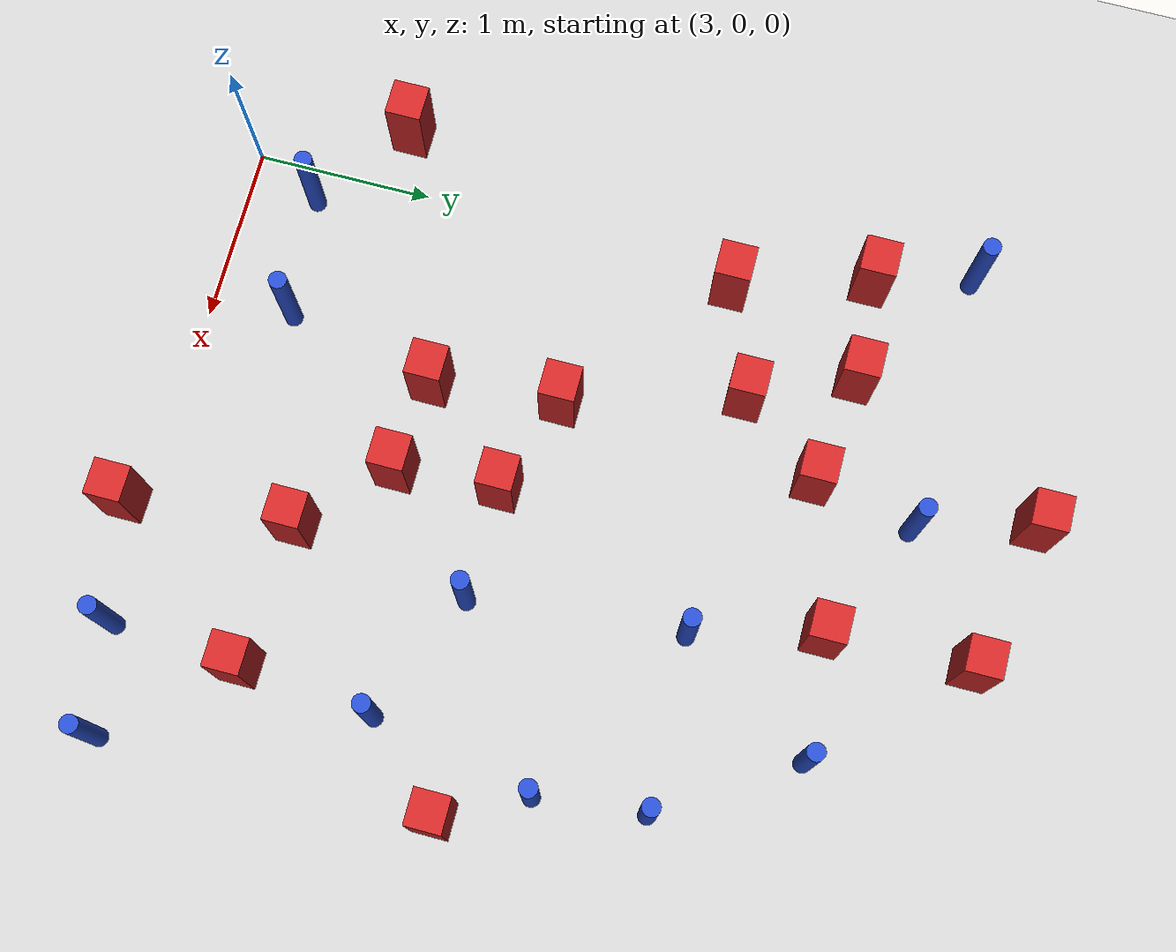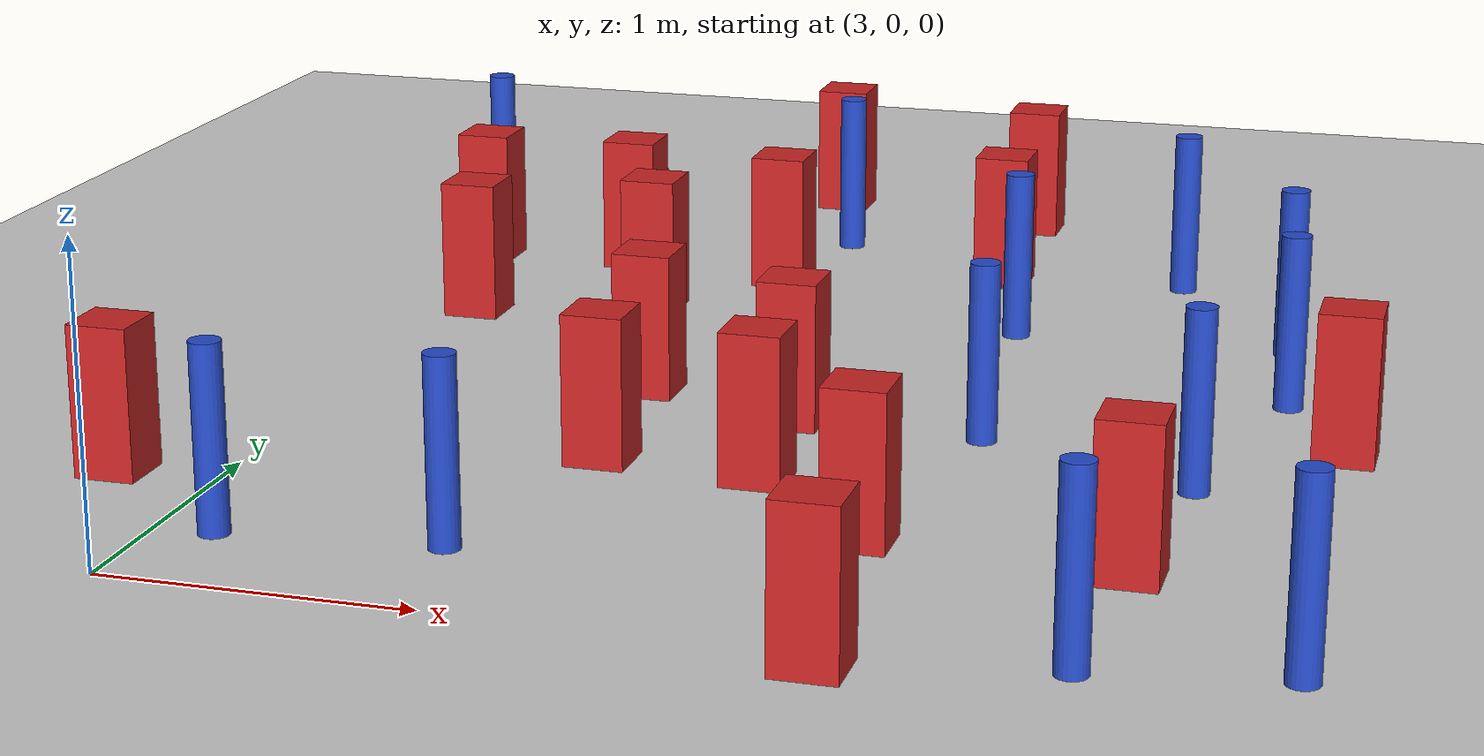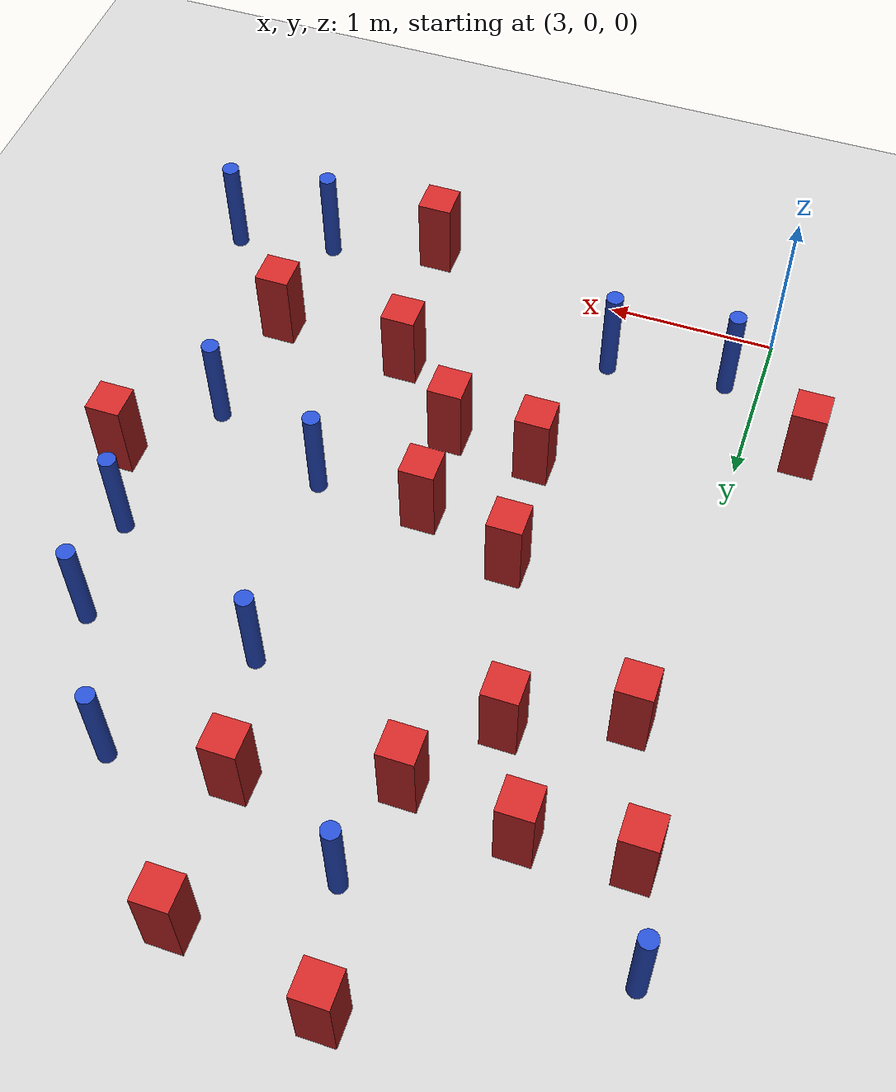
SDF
<sdf version="1.6">
 <world name="default">
  <model name="ground_plane">
   <static>1</static>
   <link name="link">
    <collision name="collision">
     <geometry><plane><normal>0 0 1</normal><size>100 100</size></plane></geometry>
     <surface><friction><ode><mu>100</mu><mu2>50</mu2></ode></friction></surface>
    </collision>
    <visual name="visual">
     <cast_shadows>0</cast_shadows>
     <geometry><plane><normal>0 0 1</normal><size>100 100</size></plane></geometry>
     <material>
      <ambient>1.0 1.0 1.0 1.0</ambient>
      <diffuse>0.8 0.8 0.8 1.0</diffuse>
      <specular>0.01 0.01 0.01 1.000000</specular>
     </material>
    </visual>
   </link>
  </model>
  <model name="pole_obstacle8">
   <static>true</static>
   <pose>5.81876079318 0.0684140431887 7.38925637345e-09 -8.471706928e-08 1.24976765192e-08 -1.7451309301e-07</pose>
   <link name="link">
    <pose>0 0 0.3 0 -0 0</pose>
    <inertial>
     <mass>1</mass>
     <inertia><ixx>0.145833</ixx><ixy>0</ixy><ixz>0</ixz><iyy>0.145833</iyy><iyz>0</iyz><izz>0.125</izz></inertia>
    </inertial>
    <collision name="collision">
     <geometry><cylinder><radius>0.05</radius><length>.6</length></cylinder></geometry>
    </collision>
    <visual name="visual">
     <geometry><cylinder><radius>0.05</radius><length>.6</length></cylinder></geometry>
     <material>
      <script><name>Gazebo/Blue</name><uri>file://media/materials/scripts/gazebo.material</uri></script>
     </material>
    </visual>
   </link>
  </model>
  <model name="square_post_obstacle11">
   <static>true</static>
   <pose>3.11903485996 2.80575910059 1.91545236811e-07 -7.35059704564e-06 1.12565212e-07 2.39332434364e-05</pose>
   <link name="link">
    <pose>0 0 0.25 0 -0 0</pose>
    <inertial>
     <mass>100</mass>
     <inertia>
      <ixx>0.166667</ixx>
      <ixy>0</ixy>
      <ixz>0</ixz>
      <iyy>0.166667</iyy>
      <iyz>0</iyz>
      <izz>0.166667</izz>
     </inertia>
    </inertial>
    <collision name="collision"><geometry><box><size>.2 .2 .5</size></box></geometry></collision>
    <visual name="visual">
     <geometry><box><size>.2 .2 .5</size></box></geometry>
     <material>
      <script><name>Gazebo/Red</name><uri>file://media/materials/scripts/gazebo.material</uri></script>
     </material>
    </visual>
   </link>
  </model>
  <model name="square_post_obstacle20">
   <static>true</static>
   <pose>5.050717038 0.856462498009 1.91545236811e-07 -7.35059704564e-06 1.12565212e-07 2.39332434364e-05</pose>
   <link name="link">
    <pose>0 0 0.25 0 -0 0</pose>
    <inertial>
     <mass>100</mass>
     <inertia>
      <ixx>0.166667</ixx>
      <ixy>0</ixy>
      <ixz>0</ixz>
      <iyy>0.166667</iyy>
      <iyz>0</iyz>
      <izz>0.166667</izz>
     </inertia>
    </inertial>
    <collision name="collision"><geometry><box><size>.2 .2 .5</size></box></geometry></collision>
    <visual name="visual">
     <geometry><box><size>.2 .2 .5</size></box></geometry>
     <material>
      <script><name>Gazebo/Red</name><uri>file://media/materials/scripts/gazebo.material</uri></script>
     </material>
    </visual>
   </link>
  </model>
  <model name="square_post_obstacle24">
   <static>true</static>
   <pose>3.47395471449 3.60048234325 1.91545236811e-07 -7.35059704564e-06 1.12565212e-07 2.39332434364e-05</pose>
   <link name="link">
    <pose>0 0 0.25 0 -0 0</pose>
    <inertial>
     <mass>100</mass>
     <inertia>
      <ixx>0.166667</ixx>
      <ixy>0</ixy>
      <ixz>0</ixz>
      <iyy>0.166667</iyy>
      <iyz>0</iyz>
      <izz>0.166667</izz>
     </inertia>
    </inertial>
    <collision name="collision"><geometry><box><size>.2 .2 .5</size></box></geometry></collision>
    <visual name="visual">
     <geometry><box><size>.2 .2 .5</size></box></geometry>
     <material>
      <script><name>Gazebo/Red</name><uri>file://media/materials/scripts/gazebo.material</uri></script>
     </material>
    </visual>
   </link>
  </model>
  <model name="square_post_obstacle25">
   <static>true</static>
   <pose>4.04534862053 4.72197150912 1.91545236811e-07 -7.35059704564e-06 1.12565212e-07 2.39332434364e-05</pose>
   <link name="link">
    <pose>0 0 0.25 0 -0 0</pose>
    <inertial>
     <mass>100</mass>
     <inertia>
      <ixx>0.166667</ixx>
      <ixy>0</ixy>
      <ixz>0</ixz>
      <iyy>0.166667</iyy>
      <iyz>0</iyz>
      <izz>0.166667</izz>
     </inertia>
    </inertial>
    <collision name="collision"><geometry><box><size>.2 .2 .5</size></box></geometry></collision>
    <visual name="visual">
     <geometry><box><size>.2 .2 .5</size></box></geometry>
     <material>
      <script><name>Gazebo/Red</name><uri>file://media/materials/scripts/gazebo.material</uri></script>
     </material>
    </visual>
   </link>
  </model>
  <model name="square_post_obstacle34">
   <static>true</static>
   <pose>4.88466175146 4.54180376756 1.91545236811e-07 -7.35059704564e-06 1.12565212e-07 2.39332434364e-05</pose>
   <link name="link">
    <pose>0 0 0.25 0 -0 0</pose>
    <inertial>
     <mass>100</mass>
     <inertia>
      <ixx>0.166667</ixx>
      <ixy>0</ixy>
      <ixz>0</ixz>
      <iyy>0.166667</iyy>
      <iyz>0</iyz>
      <izz>0.166667</izz>
     </inertia>
    </inertial>
    <collision name="collision"><geometry><box><size>.2 .2 .5</size></box></geometry></collision>
    <visual name="visual">
     <geometry><box><size>.2 .2 .5</size></box></geometry>
     <material>
      <script><name>Gazebo/Red</name><uri>file://media/materials/scripts/gazebo.material</uri></script>
     </material>
    </visual>
   </link>
  </model>
  <model name="pole_obstacle57">
   <static>true</static>
   <pose>3.89834939903 0.471611564849 7.38925637345e-09 -8.47170692801e-08 1.24976765209e-08 -1.74513093011e-07</pose>
   <link name="link">
    <pose>0 0 0.3 0 -0 0</pose>
    <inertial>
     <mass>1</mass>
     <inertia><ixx>0.145833</ixx><ixy>0</ixy><ixz>0</ixz><iyy>0.145833</iyy><iyz>0</iyz><izz>0.125</izz></inertia>
    </inertial>
    <collision name="collision">
     <geometry><cylinder><radius>0.05</radius><length>.6</length></cylinder></geometry>
    </collision>
    <visual name="visual">
     <geometry><cylinder><radius>0.05</radius><length>.6</length></cylinder></geometry>
     <material>
      <script><name>Gazebo/Blue</name><uri>file://media/materials/scripts/gazebo.material</uri></script>
     </material>
    </visual>
   </link>
  </model>
  <model name="pole_obstacle76">
   <static>true</static>
   <pose>3.19816486732 0.395554763302 7.38925637345e-09 -8.471706928e-08 1.24976765172e-08 -1.74513093013e-07</pose>
   <link name="link">
    <pose>0 0 0.3 0 -0 0</pose>
    <inertial>
     <mass>1</mass>
     <inertia><ixx>0.145833</ixx><ixy>0</ixy><ixz>0</ixz><iyy>0.145833</iyy><iyz>0</iyz><izz>0.125</izz></inertia>
    </inertial>
    <collision name="collision">
     <geometry><cylinder><radius>0.05</radius><length>.6</length></cylinder></geometry>
    </collision>
    <visual name="visual">
     <geometry><cylinder><radius>0.05</radius><length>.6</length></cylinder></geometry>
     <material>
      <script><name>Gazebo/Blue</name><uri>file://media/materials/scripts/gazebo.material</uri></script>
     </material>
    </visual>
   </link>
  </model>
  <model name="square_post_obstacle81">
   <static>true</static>
   <pose>2.66585608434 0.818674959784 1.91545236811e-07 -7.35059704564e-06 1.12565212e-07 2.39332434364e-05</pose>
   <link name="link">
    <pose>0 0 0.25 0 -0 0</pose>
    <inertial>
     <mass>100</mass>
     <inertia>
      <ixx>0.166667</ixx>
      <ixy>0</ixy>
      <ixz>0</ixz>
      <iyy>0.166667</iyy>
      <iyz>0</iyz>
      <izz>0.166667</izz>
     </inertia>
    </inertial>
    <collision name="collision"><geometry><box><size>.2 .2 .5</size></box></geometry></collision>
    <visual name="visual">
     <geometry><box><size>.2 .2 .5</size></box></geometry>
     <material>
      <script><name>Gazebo/Red</name><uri>file://media/materials/scripts/gazebo.material</uri></script>
     </material>
    </visual>
   </link>
  </model>
  <model name="square_post_obstacle84">
   <static>true</static>
   <pose>4.09072070267 1.34215857867 1.91545236811e-07 -7.35059704564e-06 1.12565212e-07 2.39332434364e-05</pose>
   <link name="link">
    <pose>0 0 0.25 0 -0 0</pose>
    <inertial>
     <mass>100</mass>
     <inertia>
      <ixx>0.166667</ixx>
      <ixy>0</ixy>
      <ixz>0</ixz>
      <iyy>0.166667</iyy>
      <iyz>0</iyz>
      <izz>0.166667</izz>
     </inertia>
    </inertial>
    <collision name="collision"><geometry><box><size>.2 .2 .5</size></box></geometry></collision>
    <visual name="visual">
     <geometry><box><size>.2 .2 .5</size></box></geometry>
     <material>
      <script><name>Gazebo/Red</name><uri>file://media/materials/scripts/gazebo.material</uri></script>
     </material>
    </visual>
   </link>
  </model>
  <model name="square_post_obstacle93">
   <static>true</static>
   <pose>4.91069095418 3.73931372454 1.91545236811e-07 -7.35059704564e-06 1.12565212e-07 2.39332434364e-05</pose>
   <link name="link">
    <pose>0 0 0.25 0 -0 0</pose>
    <inertial>
     <mass>100</mass>
     <inertia>
      <ixx>0.166667</ixx>
      <ixy>0</ixy>
      <ixz>0</ixz>
      <iyy>0.166667</iyy>
      <iyz>0</iyz>
      <izz>0.166667</izz>
     </inertia>
    </inertial>
    <collision name="collision"><geometry><box><size>.2 .2 .5</size></box></geometry></collision>
    <visual name="visual">
     <geometry><box><size>.2 .2 .5</size></box></geometry>
     <material>
      <script><name>Gazebo/Red</name><uri>file://media/materials/scripts/gazebo.material</uri></script>
     </material>
    </visual>
   </link>
  </model>
  <model name="pole_obstacle109">
   <static>true</static>
   <pose>5.59062107229 3.79712545104 7.38925637345e-09 -8.47170692798e-08 1.24976764937e-08 -1.74513093023e-07</pose>
   <link name="link">
    <pose>0 0 0.3 0 -0 0</pose>
    <inertial>
     <mass>1</mass>
     <inertia><ixx>0.145833</ixx><ixy>0</ixy><ixz>0</ixz><iyy>0.145833</iyy><iyz>0</iyz><izz>0.125</izz></inertia>
    </inertial>
    <collision name="collision">
     <geometry><cylinder><radius>0.05</radius><length>.6</length></cylinder></geometry>
    </collision>
    <visual name="visual">
     <geometry><cylinder><radius>0.05</radius><length>.6</length></cylinder></geometry>
     <material>
      <script><name>Gazebo/Blue</name><uri>file://media/materials/scripts/gazebo.material</uri></script>
     </material>
    </visual>
   </link>
  </model>
  <model name="square_post_obstacle115">
   <static>true</static>
   <pose>5.85704405423 0.792932591989 1.91545236811e-07 -7.35059704564e-06 1.12565212e-07 2.39332434364e-05</pose>
   <link name="link">
    <pose>0 0 0.25 0 -0 0</pose>
    <inertial>
     <mass>100</mass>
     <inertia>
      <ixx>0.166667</ixx>
      <ixy>0</ixy>
      <ixz>0</ixz>
      <iyy>0.166667</iyy>
      <iyz>0</iyz>
      <izz>0.166667</izz>
     </inertia>
    </inertial>
    <collision name="collision"><geometry><box><size>.2 .2 .5</size></box></geometry></collision>
    <visual name="visual">
     <geometry><box><size>.2 .2 .5</size></box></geometry>
     <material>
      <script><name>Gazebo/Red</name><uri>file://media/materials/scripts/gazebo.material</uri></script>
     </material>
    </visual>
   </link>
  </model>
  <model name="square_post_obstacle118">
   <static>true</static>
   <pose>5.15334759942 -0.0833712169399 1.91545236811e-07 -7.35059704564e-06 1.12565212e-07 2.39332434364e-05</pose>
   <link name="link">
    <pose>0 0 0.25 0 -0 0</pose>
    <inertial>
     <mass>100</mass>
     <inertia>
      <ixx>0.166667</ixx>
      <ixy>0</ixy>
      <ixz>0</ixz>
      <iyy>0.166667</iyy>
      <iyz>0</iyz>
      <izz>0.166667</izz>
     </inertia>
    </inertial>
    <collision name="collision"><geometry><box><size>.2 .2 .5</size></box></geometry></collision>
    <visual name="visual">
     <geometry><box><size>.2 .2 .5</size></box></geometry>
     <material>
      <script><name>Gazebo/Red</name><uri>file://media/materials/scripts/gazebo.material</uri></script>
     </material>
    </visual>
   </link>
  </model>
  <model name="pole_obstacle129">
   <static>true</static>
   <pose>5.93803016133 1.55037709091 7.38925637345e-09 -8.471706928e-08 1.24976765134e-08 -1.74513093015e-07</pose>
   <link name="link">
    <pose>0 0 0.3 0 -0 0</pose>
    <inertial>
     <mass>1</mass>
     <inertia><ixx>0.145833</ixx><ixy>0</ixy><ixz>0</ixz><iyy>0.145833</iyy><iyz>0</iyz><izz>0.125</izz></inertia>
    </inertial>
    <collision name="collision">
     <geometry><cylinder><radius>0.05</radius><length>.6</length></cylinder></geometry>
    </collision>
    <visual name="visual">
     <geometry><cylinder><radius>0.05</radius><length>.6</length></cylinder></geometry>
     <material>
      <script><name>Gazebo/Blue</name><uri>file://media/materials/scripts/gazebo.material</uri></script>
     </material>
    </visual>
   </link>
  </model>
  <model name="pole_obstacle132">
   <static>true</static>
   <pose>2.73510532201 4.11237364212 7.38925637345e-09 -8.47170692798e-08 1.24976765033e-08 -1.74513093019e-07</pose>
   <link name="link">
    <pose>0 0 0.3 0 -0 0</pose>
    <inertial>
     <mass>1</mass>
     <inertia><ixx>0.145833</ixx><ixy>0</ixy><ixz>0</ixz><iyy>0.145833</iyy><iyz>0</iyz><izz>0.125</izz></inertia>
    </inertial>
    <collision name="collision">
     <geometry><cylinder><radius>0.05</radius><length>.6</length></cylinder></geometry>
    </collision>
    <visual name="visual">
     <geometry><cylinder><radius>0.05</radius><length>.6</length></cylinder></geometry>
     <material>
      <script><name>Gazebo/Blue</name><uri>file://media/materials/scripts/gazebo.material</uri></script>
     </material>
    </visual>
   </link>
  </model>
  <model name="pole_obstacle138">
   <static>true</static>
   <pose>5.21124114447 1.85469773715 7.38925637345e-09 -8.471706928e-08 1.24976765134e-08 -1.74513093015e-07</pose>
   <link name="link">
    <pose>0 0 0.3 0 -0 0</pose>
    <inertial>
     <mass>1</mass>
     <inertia><ixx>0.145833</ixx><ixy>0</ixy><ixz>0</ixz><iyy>0.145833</iyy><iyz>0</iyz><izz>0.125</izz></inertia>
    </inertial>
    <collision name="collision">
     <geometry><cylinder><radius>0.05</radius><length>.6</length></cylinder></geometry>
    </collision>
    <visual name="visual">
     <geometry><cylinder><radius>0.05</radius><length>.6</length></cylinder></geometry>
     <material>
      <script><name>Gazebo/Blue</name><uri>file://media/materials/scripts/gazebo.material</uri></script>
     </material>
    </visual>
   </link>
  </model>
  <model name="pole_obstacle148">
   <static>true</static>
   <pose>6.0606092011 3.07383645956 7.38925637345e-09 -8.47170692798e-08 1.24976764937e-08 -1.74513093023e-07</pose>
   <link name="link">
    <pose>0 0 0.3 0 -0 0</pose>
    <inertial>
     <mass>1</mass>
     <inertia><ixx>0.145833</ixx><ixy>0</ixy><ixz>0</ixz><iyy>0.145833</iyy><iyz>0</iyz><izz>0.125</izz></inertia>
    </inertial>
    <collision name="collision">
     <geometry><cylinder><radius>0.05</radius><length>.6</length></cylinder></geometry>
    </collision>
    <visual name="visual">
     <geometry><cylinder><radius>0.05</radius><length>.6</length></cylinder></geometry>
     <material>
      <script><name>Gazebo/Blue</name><uri>file://media/materials/scripts/gazebo.material</uri></script>
     </material>
    </visual>
   </link>
  </model>
  <model name="square_post_obstacle165">
   <static>true</static>
   <pose>4.01994350826 2.06260012082 1.91545236811e-07 -7.35059704564e-06 1.12565212e-07 2.39332434364e-05</pose>
   <link name="link">
    <pose>0 0 0.25 0 -0 0</pose>
    <inertial>
     <mass>100</mass>
     <inertia>
      <ixx>0.166667</ixx>
      <ixy>0</ixy>
      <ixz>0</ixz>
      <iyy>0.166667</iyy>
      <iyz>0</iyz>
      <izz>0.166667</izz>
     </inertia>
    </inertial>
    <collision name="collision"><geometry><box><size>.2 .2 .5</size></box></geometry></collision>
    <visual name="visual">
     <geometry><box><size>.2 .2 .5</size></box></geometry>
     <material>
      <script><name>Gazebo/Red</name><uri>file://media/materials/scripts/gazebo.material</uri></script>
     </material>
    </visual>
   </link>
  </model>
  <model name="square_post_obstacle167">
   <static>true</static>
   <pose>4.57509815485 1.87101891292 1.91545236811e-07 -7.35059704564e-06 1.12565212e-07 2.39332434364e-05</pose>
   <link name="link">
    <pose>0 0 0.25 0 -0 0</pose>
    <inertial>
     <mass>100</mass>
     <inertia>
      <ixx>0.166667</ixx>
      <ixy>0</ixy>
      <ixz>0</ixz>
      <iyy>0.166667</iyy>
      <iyz>0</iyz>
      <izz>0.166667</izz>
     </inertia>
    </inertial>
    <collision name="collision"><geometry><box><size>.2 .2 .5</size></box></geometry></collision>
    <visual name="visual">
     <geometry><box><size>.2 .2 .5</size></box></geometry>
     <material>
      <script><name>Gazebo/Red</name><uri>file://media/materials/scripts/gazebo.material</uri></script>
     </material>
    </visual>
   </link>
  </model>
  <model name="square_post_obstacle182">
   <static>true</static>
   <pose>6.35492816936 2.00564149812 1.91545236811e-07 -7.35059704564e-06 1.12565212e-07 2.39332434364e-05</pose>
   <link name="link">
    <pose>0 0 0.25 0 -0 0</pose>
    <inertial>
     <mass>100</mass>
     <inertia>
      <ixx>0.166667</ixx>
      <ixy>0</ixy>
      <ixz>0</ixz>
      <iyy>0.166667</iyy>
      <iyz>0</iyz>
      <izz>0.166667</izz>
     </inertia>
    </inertial>
    <collision name="collision"><geometry><box><size>.2 .2 .5</size></box></geometry></collision>
    <visual name="visual">
     <geometry><box><size>.2 .2 .5</size></box></geometry>
     <material>
      <script><name>Gazebo/Red</name><uri>file://media/materials/scripts/gazebo.material</uri></script>
     </material>
    </visual>
   </link>
  </model>
  <model name="pole_obstacle186">
   <static>true</static>
   <pose>6.12707917852 2.46583057717 7.38925637345e-09 -8.47170692798e-08 1.24976764937e-08 -1.74513093023e-07</pose>
   <link name="link">
    <pose>0 0 0.3 0 -0 0</pose>
    <inertial>
     <mass>1</mass>
     <inertia><ixx>0.145833</ixx><ixy>0</ixy><ixz>0</ixz><iyy>0.145833</iyy><iyz>0</iyz><izz>0.125</izz></inertia>
    </inertial>
    <collision name="collision">
     <geometry><cylinder><radius>0.05</radius><length>.6</length></cylinder></geometry>
    </collision>
    <visual name="visual">
     <geometry><cylinder><radius>0.05</radius><length>.6</length></cylinder></geometry>
     <material>
      <script><name>Gazebo/Blue</name><uri>file://media/materials/scripts/gazebo.material</uri></script>
     </material>
    </visual>
   </link>
  </model>
  <model name="square_post_obstacle194">
   <static>true</static>
   <pose>4.615592289 1.2922080645 1.91545236811e-07 -7.35059704564e-06 1.12565212e-07 2.39332434364e-05</pose>
   <link name="link">
    <pose>0 0 0.25 0 -0 0</pose>
    <inertial>
     <mass>100</mass>
     <inertia>
      <ixx>0.166667</ixx>
      <ixy>0</ixy>
      <ixz>0</ixz>
      <iyy>0.166667</iyy>
      <iyz>0</iyz>
      <izz>0.166667</izz>
     </inertia>
    </inertial>
    <collision name="collision"><geometry><box><size>.2 .2 .5</size></box></geometry></collision>
    <visual name="visual">
     <geometry><box><size>.2 .2 .5</size></box></geometry>
     <material>
      <script><name>Gazebo/Red</name><uri>file://media/materials/scripts/gazebo.material</uri></script>
     </material>
    </visual>
   </link>
  </model>
  <model name="square_post_obstacle202">
   <static>true</static>
   <pose>3.73139322403 3.03430531291 1.91545236811e-07 -7.35059704564e-06 1.12565212e-07 2.39332434364e-05</pose>
   <link name="link">
    <pose>0 0 0.25 0 -0 0</pose>
    <inertial>
     <mass>100</mass>
     <inertia>
      <ixx>0.166667</ixx>
      <ixy>0</ixy>
      <ixz>0</ixz>
      <iyy>0.166667</iyy>
      <iyz>0</iyz>
      <izz>0.166667</izz>
     </inertia>
    </inertial>
    <collision name="collision"><geometry><box><size>.2 .2 .5</size></box></geometry></collision>
    <visual name="visual">
     <geometry><box><size>.2 .2 .5</size></box></geometry>
     <material>
      <script><name>Gazebo/Red</name><uri>file://media/materials/scripts/gazebo.material</uri></script>
     </material>
    </visual>
   </link>
  </model>
  <model name="pole_obstacle204">
   <static>true</static>
   <pose>6.40970457572 0.176258707297 7.38925637345e-09 -8.471706928e-08 1.24976765151e-08 -1.74513093014e-07</pose>
   <link name="link">
    <pose>0 0 0.3 0 -0 0</pose>
    <inertial>
     <mass>1</mass>
     <inertia><ixx>0.145833</ixx><ixy>0</ixy><ixz>0</ixz><iyy>0.145833</iyy><iyz>0</iyz><izz>0.125</izz></inertia>
    </inertial>
    <collision name="collision">
     <geometry><cylinder><radius>0.05</radius><length>.6</length></cylinder></geometry>
    </collision>
    <visual name="visual">
     <geometry><cylinder><radius>0.05</radius><length>.6</length></cylinder></geometry>
     <material>
      <script><name>Gazebo/Blue</name><uri>file://media/materials/scripts/gazebo.material</uri></script>
     </material>
    </visual>
   </link>
  </model>
  <model name="square_post_obstacle217">
   <static>true</static>
   <pose>2.89336974919 3.55929611412 1.91545236811e-07 -7.35059704564e-06 1.12565212e-07 2.39332434364e-05</pose>
   <link name="link">
    <pose>0 0 0.25 0 -0 0</pose>
    <inertial>
     <mass>100</mass>
     <inertia>
      <ixx>0.166667</ixx>
      <ixy>0</ixy>
      <ixz>0</ixz>
      <iyy>0.166667</iyy>
      <iyz>0</iyz>
      <izz>0.166667</izz>
     </inertia>
    </inertial>
    <collision name="collision"><geometry><box><size>.2 .2 .5</size></box></geometry></collision>
    <visual name="visual">
     <geometry><box><size>.2 .2 .5</size></box></geometry>
     <material>
      <script><name>Gazebo/Red</name><uri>file://media/materials/scripts/gazebo.material</uri></script>
     </material>
    </visual>
   </link>
  </model>
  <model name="square_post_obstacle222">
   <static>true</static>
   <pose>4.09906811928 3.50298409898 1.91545236811e-07 -7.35059704564e-06 1.12565212e-07 2.39332434364e-05</pose>
   <link name="link">
    <pose>0 0 0.25 0 -0 0</pose>
    <inertial>
     <mass>100</mass>
     <inertia>
      <ixx>0.166667</ixx>
      <ixy>0</ixy>
      <ixz>0</ixz>
      <iyy>0.166667</iyy>
      <iyz>0</iyz>
      <izz>0.166667</izz>
     </inertia>
    </inertial>
    <collision name="collision"><geometry><box><size>.2 .2 .5</size></box></geometry></collision>
    <visual name="visual">
     <geometry><box><size>.2 .2 .5</size></box></geometry>
     <material>
      <script><name>Gazebo/Red</name><uri>file://media/materials/scripts/gazebo.material</uri></script>
     </material>
    </visual>
   </link>
  </model>
  <model name="pole_obstacle226">
   <static>true</static>
   <pose>5.09422000957 3.04255002078 7.38925637345e-09 -8.47170692799e-08 1.24976765028e-08 -1.74513093019e-07</pose>
   <link name="link">
    <pose>0 0 0.3 0 -0 0</pose>
    <inertial>
     <mass>1</mass>
     <inertia><ixx>0.145833</ixx><ixy>0</ixy><ixz>0</ixz><iyy>0.145833</iyy><iyz>0</iyz><izz>0.125</izz></inertia>
    </inertial>
    <collision name="collision">
     <geometry><cylinder><radius>0.05</radius><length>.6</length></cylinder></geometry>
    </collision>
    <visual name="visual">
     <geometry><cylinder><radius>0.05</radius><length>.6</length></cylinder></geometry>
     <material>
      <script><name>Gazebo/Blue</name><uri>file://media/materials/scripts/gazebo.material</uri></script>
     </material>
    </visual>
   </link>
  </model>
  <model name="pole_obstacle231">
   <static>true</static>
   <pose>4.22782000957 4.07603002078 7.38925637345e-09 -8.47170692796e-08 1.24976764786e-08 -1.74513093032e-07</pose>
   <link name="link">
    <pose>0 0 0.3 0 -0 0</pose>
    <inertial>
     <mass>1</mass>
     <inertia><ixx>0.145833</ixx><ixy>0</ixy><ixz>0</ixz><iyy>0.145833</iyy><iyz>0</iyz><izz>0.125</izz></inertia>
    </inertial>
    <collision name="collision">
     <geometry><cylinder><radius>0.05</radius><length>.6</length></cylinder></geometry>
    </collision>
    <visual name="visual">
     <geometry><cylinder><radius>0.05</radius><length>.6</length></cylinder></geometry>
     <material>
      <script><name>Gazebo/Blue</name><uri>file://media/materials/scripts/gazebo.material</uri></script>
     </material>
    </visual>
   </link>
  </model>
 </world>
</sdf>
